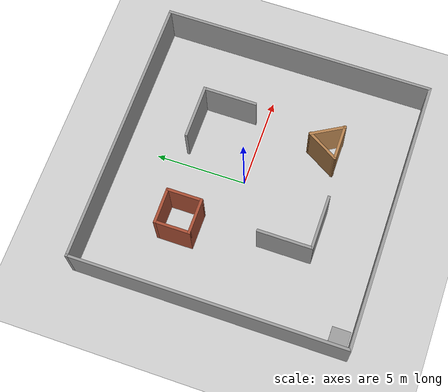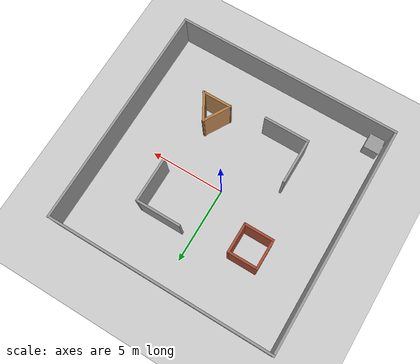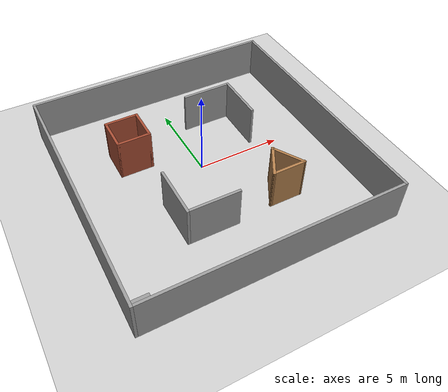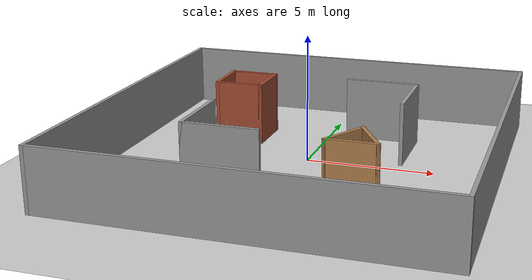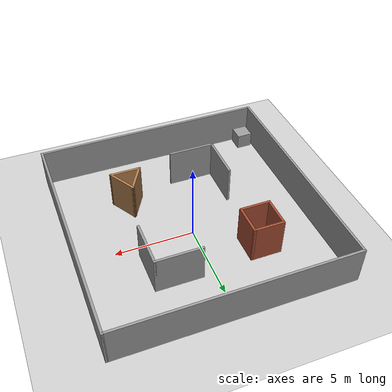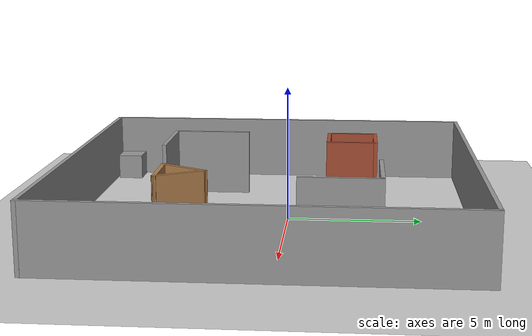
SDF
<sdf version="1.7">
 <world name="default">
  <light name="sun" type="directional">
   <pose>0 0 10 0 -0 0</pose>
   <diffuse>0.8 0.8 0.8 1</diffuse>
   <specular>0.2 0.2 0.2 1</specular>
   <attenuation>
    <range>1000</range>
    <constant>0.9</constant>
    <linear>0.01</linear>
    <quadratic>0.001</quadratic>
   </attenuation>
   <direction>-0.5 0.1 -0.9</direction>
   <spot><inner_angle>0</inner_angle><outer_angle>0</outer_angle><falloff>0</falloff></spot>
  </light>
  <model name="ground_plane">
   <static>1</static>
   <link name="link">
    <collision name="collision">
     <geometry><plane><normal>0 0 1</normal><size>100 100</size></plane></geometry>
     <surface>
      <contact><collide_bitmask>65535</collide_bitmask></contact>
      <friction><ode><mu>100</mu><mu2>50</mu2></ode></friction>
     </surface>
    </collision>
    <visual name="visual">
     <cast_shadows>0</cast_shadows>
     <geometry><plane><normal>0 0 1</normal><size>100 100</size></plane></geometry>
     <material>
      <script><uri>file://media/materials/scripts/gazebo.material</uri><name>Gazebo/Grey</name></script>
     </material>
    </visual>
   </link>
  </model>
  <gravity>0 0 -9.8</gravity>
  <magnetic_field>6e-06 2.3e-05 -4.2e-05</magnetic_field>
  <atmosphere type="adiabatic"/>
  <physics type="ode">
   <max_step_size>0.001</max_step_size>
   <real_time_factor>1</real_time_factor>
   <real_time_update_rate>1000</real_time_update_rate>
  </physics>
  <scene><ambient>0.4 0.4 0.4 1</ambient><background>0.7 0.7 0.7 1</background><shadows>1</shadows></scene>
  <spherical_coordinates>
   <surface_model>EARTH_WGS84</surface_model>
   <latitude_deg>0</latitude_deg>
   <longitude_deg>0</longitude_deg>
   <elevation>0</elevation>
   <heading_deg>0</heading_deg>
  </spherical_coordinates>
  <model name="15*15">
   <link name="Wall_0">
    <collision name="Wall_0_Collision">
     <geometry><box><size>15 0.15 2.5</size></box></geometry>
     <pose>0 0 1.25 0 -0 0</pose>
    </collision>
    <visual name="Wall_0_Visual">
     <pose>0 0 1.25 0 -0 0</pose>
     <geometry><box><size>15 0.15 2.5</size></box></geometry>
     <material>
      <script><uri>file://media/materials/scripts/gazebo.material</uri><name>Gazebo/Grey</name></script>
      <ambient>1 1 1 1</ambient>
     </material>
     <meta><layer>0</layer></meta>
    </visual>
    <pose>-7.425 -0.5725 0 0 -0 -1.5708</pose>
   </link>
   <link name="Wall_2">
    <collision name="Wall_2_Collision">
     <geometry><box><size>15 0.15 2.5</size></box></geometry>
     <pose>0 0 1.25 0 -0 0</pose>
    </collision>
    <visual name="Wall_2_Visual">
     <pose>0 0 1.25 0 -0 0</pose>
     <geometry><box><size>15 0.15 2.5</size></box></geometry>
     <material>
      <script><uri>file://media/materials/scripts/gazebo.material</uri><name>Gazebo/Grey</name></script>
      <ambient>1 1 1 1</ambient>
     </material>
     <meta><layer>0</layer></meta>
    </visual>
    <pose>0 6.8525 0 0 -0 0</pose>
   </link>
   <link name="Wall_4">
    <collision name="Wall_4_Collision">
     <geometry><box><size>15 0.15 2.5</size></box></geometry>
     <pose>0 0 1.25 0 -0 0</pose>
    </collision>
    <visual name="Wall_4_Visual">
     <pose>0 0 1.25 0 -0 0</pose>
     <geometry><box><size>15 0.15 2.5</size></box></geometry>
     <material>
      <script><uri>file://media/materials/scripts/gazebo.material</uri><name>Gazebo/Grey</name></script>
      <ambient>1 1 1 1</ambient>
     </material>
     <meta><layer>0</layer></meta>
    </visual>
    <pose>7.425 -0.5725 0 0 -0 -1.5708</pose>
   </link>
   <link name="Wall_5">
    <collision name="Wall_5_Collision">
     <geometry><box><size>15 0.15 2.5</size></box></geometry>
     <pose>0 0 1.25 0 -0 0</pose>
    </collision>
    <visual name="Wall_5_Visual">
     <pose>0 0 1.25 0 -0 0</pose>
     <geometry><box><size>15 0.15 2.5</size></box></geometry>
     <material>
      <script><uri>file://media/materials/scripts/gazebo.material</uri><name>Gazebo/Grey</name></script>
      <ambient>1 1 1 1</ambient>
     </material>
     <meta><layer>0</layer></meta>
    </visual>
    <pose>0 -7.9975 0 0 -0 3.14159</pose>
   </link>
   <static>1</static>
  </model>
  <model name="3*3">
   <pose>4.91911 2.73447 0 0 -0 0</pose>
   <link name="Wall_15">
    <collision name="Wall_15_Collision">
     <geometry><box><size>3 0.15 2.5</size></box></geometry>
     <pose>0 0 1.25 0 -0 0</pose>
    </collision>
    <visual name="Wall_15_Visual">
     <pose>0 0 1.25 0 -0 0</pose>
     <geometry><box><size>3 0.15 2.5</size></box></geometry>
     <material>
      <script><uri>file://media/materials/scripts/gazebo.material</uri><name>Gazebo/Grey</name></script>
      <ambient>1 1 1 1</ambient>
     </material>
     <meta><layer>0</layer></meta>
    </visual>
    <pose>-2.7555 0.7185 0 0 -0 0</pose>
   </link>
   <link name="Wall_16">
    <collision name="Wall_16_Collision">
     <geometry><box><size>3 0.15 2.5</size></box></geometry>
     <pose>0 0 1.25 0 -0 0</pose>
    </collision>
    <visual name="Wall_16_Visual">
     <pose>0 0 1.25 0 -0 0</pose>
     <geometry><box><size>3 0.15 2.5</size></box></geometry>
     <material>
      <script><uri>file://media/materials/scripts/gazebo.material</uri><name>Gazebo/Grey</name></script>
      <ambient>1 1 1 1</ambient>
     </material>
     <meta><layer>0</layer></meta>
    </visual>
    <pose>-1.3305 -0.7065 0 0 -0 -1.5708</pose>
   </link>
   <static>1</static>
  </model>
  <model name="2*2c">
   <pose>-3.40048 7.73465 0 0 -0 0</pose>
   <link name="Wall_23">
    <collision name="Wall_23_Collision">
     <geometry><box><size>2 0.15 2.5</size></box></geometry>
     <pose>0 0 1.25 0 -0 0</pose>
    </collision>
    <visual name="Wall_23_Visual">
     <pose>0 0 1.25 0 -0 0</pose>
     <geometry><box><size>2 0.15 2.5</size></box></geometry>
     <material>
      <script><uri>file://media/materials/scripts/gazebo.material</uri><name>Gazebo/Bricks</name></script>
      <ambient>1 1 1 1</ambient>
     </material>
     <meta><layer>0</layer></meta>
    </visual>
    <pose>-0.925 -5.3617 0 0 -0 -1.5708</pose>
   </link>
   <link name="Wall_24">
    <collision name="Wall_24_Collision">
     <geometry><box><size>2 0.15 2.5</size></box></geometry>
     <pose>0 0 1.25 0 -0 0</pose>
    </collision>
    <visual name="Wall_24_Visual">
     <pose>0 0 1.25 0 -0 0</pose>
     <geometry><box><size>2 0.15 2.5</size></box></geometry>
     <material>
      <script><uri>file://media/materials/scripts/gazebo.material</uri><name>Gazebo/Bricks</name></script>
      <ambient>1 1 1 1</ambient>
     </material>
     <meta><layer>0</layer></meta>
    </visual>
    <pose>0 -6.2867 0 0 -0 0</pose>
   </link>
   <link name="Wall_25">
    <collision name="Wall_25_Collision">
     <geometry><box><size>2 0.15 2.5</size></box></geometry>
     <pose>0 0 1.25 0 -0 0</pose>
    </collision>
    <visual name="Wall_25_Visual">
     <pose>0 0 1.25 0 -0 0</pose>
     <geometry><box><size>2 0.15 2.5</size></box></geometry>
     <material>
      <script><uri>file://media/materials/scripts/gazebo.material</uri><name>Gazebo/Bricks</name></script>
      <ambient>1 1 1 1</ambient>
     </material>
     <meta><layer>0</layer></meta>
    </visual>
    <pose>0.925 -5.3617 0 0 -0 1.5708</pose>
   </link>
   <link name="Wall_26">
    <collision name="Wall_26_Collision">
     <geometry><box><size>2 0.15 2.5</size></box></geometry>
     <pose>0 0 1.25 0 -0 0</pose>
    </collision>
    <visual name="Wall_26_Visual">
     <pose>0 0 1.25 0 -0 0</pose>
     <geometry><box><size>2 0.15 2.5</size></box></geometry>
     <material>
      <script><uri>file://media/materials/scripts/gazebo.material</uri><name>Gazebo/Bricks</name></script>
      <ambient>1 1 1 1</ambient>
     </material>
     <meta><layer>0</layer></meta>
    </visual>
    <pose>0 -4.4367 0 0 -0 3.14159</pose>
   </link>
   <static>1</static>
  </model>
  <model name="3*3_0">
   <pose>-4.50101 -3.97479 0.225974 0 -0 3.14</pose>
   <link name="Wall_15">
    <collision name="Wall_15_Collision">
     <geometry><box><size>3 0.15 2.5</size></box></geometry>
     <pose>0 0 1.25 0 -0 0</pose>
    </collision>
    <visual name="Wall_15_Visual">
     <pose>0 0 1.25 0 -0 0</pose>
     <geometry><box><size>3 0.15 2.5</size></box></geometry>
     <material>
      <script><uri>file://media/materials/scripts/gazebo.material</uri><name>Gazebo/Grey</name></script>
      <ambient>1 1 1 1</ambient>
     </material>
     <meta><layer>0</layer></meta>
    </visual>
    <pose>-2.7555 0.7185 0 0 -0 0</pose>
   </link>
   <link name="Wall_16">
    <collision name="Wall_16_Collision">
     <geometry><box><size>3 0.15 2.5</size></box></geometry>
     <pose>0 0 1.25 0 -0 0</pose>
    </collision>
    <visual name="Wall_16_Visual">
     <pose>0 0 1.25 0 -0 0</pose>
     <geometry><box><size>3 0.15 2.5</size></box></geometry>
     <material>
      <script><uri>file://media/materials/scripts/gazebo.material</uri><name>Gazebo/Grey</name></script>
      <ambient>1 1 1 1</ambient>
     </material>
     <meta><layer>0</layer></meta>
    </visual>
    <pose>-1.3305 -0.7065 0 0 -0 -1.5708</pose>
   </link>
   <static>1</static>
  </model>
  <model name="2*2t">
   <pose>5.11763 2.15305 0 0 -0 0</pose>
   <link name="Wall_28">
    <collision name="Wall_28_Collision">
     <geometry><box><size>2 0.15 2.5</size></box></geometry>
     <pose>0 0 1.25 0 -0 0</pose>
    </collision>
    <visual name="Wall_28_Visual">
     <pose>0 0 1.25 0 -0 0</pose>
     <geometry><box><size>2 0.15 2.5</size></box></geometry>
     <material>
      <script><uri>file://media/materials/scripts/gazebo.material</uri><name>Gazebo/Wood</name></script>
      <ambient>1 1 1 1</ambient>
     </material>
     <meta><layer>0</layer></meta>
    </visual>
    <pose>-2.69561 -5.67772 0 0 -0 -2.0944</pose>
   </link>
   <link name="Wall_29">
    <collision name="Wall_29_Collision">
     <geometry><box><size>2 0.15 2.5</size></box></geometry>
     <pose>0 0 1.25 0 -0 0</pose>
    </collision>
    <visual name="Wall_29_Visual">
     <pose>0 0 1.25 0 -0 0</pose>
     <geometry><box><size>2 0.15 2.5</size></box></geometry>
     <material>
      <script><uri>file://media/materials/scripts/gazebo.material</uri><name>Gazebo/Wood</name></script>
      <ambient>1 1 1 1</ambient>
     </material>
     <meta><layer>0</layer></meta>
    </visual>
    <pose>-2.23311 -6.47879 0 0 -0 0</pose>
   </link>
   <link name="Wall_30">
    <collision name="Wall_30_Collision">
     <geometry><box><size>2 0.15 2.5</size></box></geometry>
     <pose>0 0 1.25 0 -0 0</pose>
    </collision>
    <visual name="Wall_30_Visual">
     <pose>0 0 1.25 0 -0 0</pose>
     <geometry><box><size>2 0.15 2.5</size></box></geometry>
     <material>
      <script><uri>file://media/materials/scripts/gazebo.material</uri><name>Gazebo/Wood</name></script>
      <ambient>1 1 1 1</ambient>
     </material>
     <meta><layer>0</layer></meta>
    </visual>
    <pose>-1.77061 -5.67772 0 0 -0 2.0944</pose>
   </link>
   <static>1</static>
  </model>
  <model name="unit_box">
   <pose>-6.72262 -7.33692 0.5 0 -0 0</pose>
   <link name="link">
    <inertial>
     <mass>1</mass>
     <inertia>
      <ixx>0.166667</ixx>
      <ixy>0</ixy>
      <ixz>0</ixz>
      <iyy>0.166667</iyy>
      <iyz>0</iyz>
      <izz>0.166667</izz>
     </inertia>
    </inertial>
    <collision name="collision"><geometry><box><size>1 1 1</size></box></geometry></collision>
    <visual name="visual">
     <geometry><box><size>1 1 1</size></box></geometry>
     <material>
      <script><name>Gazebo/Grey</name><uri>file://media/materials/scripts/gazebo.material</uri></script>
     </material>
    </visual>
   </link>
  </model>
 </world>
</sdf>
